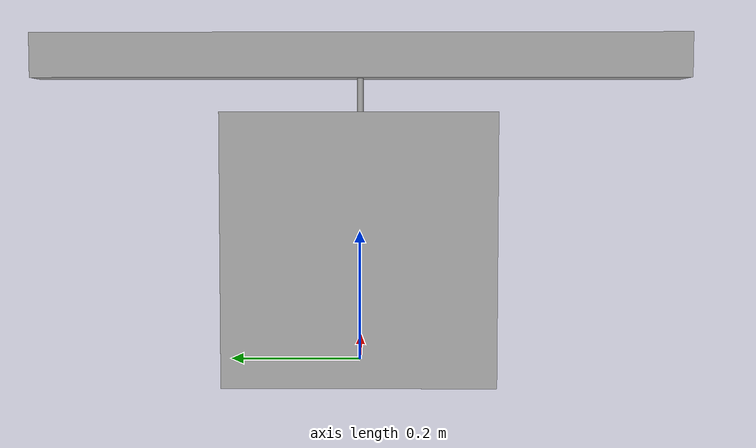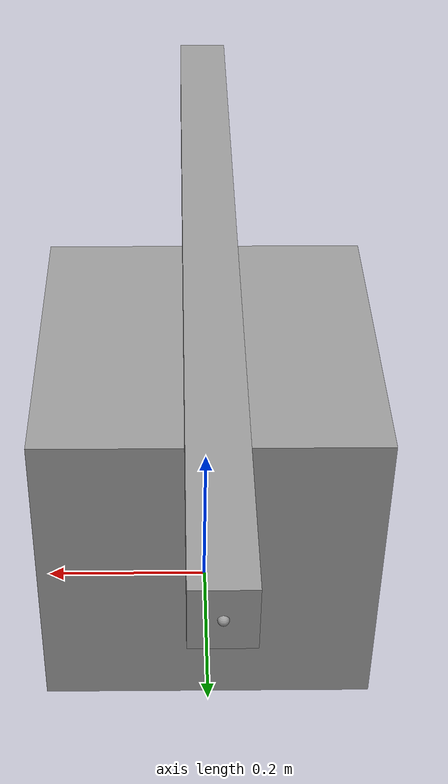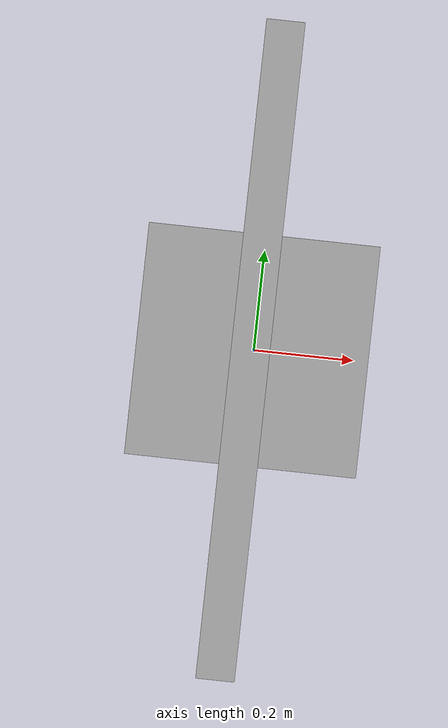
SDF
<?xml version='1.0'?>
<sdf version='1.6'>
  <model name='example'>
    <pose>-0.001696 0.074616 0.37556 0 0 0</pose>
    <link name='link_0'>
      <inertial>
        <mass>19299.9</mass>
        <inertia>
          <ixx>461.921</ixx>
          <ixy>0</ixy>
          <ixz>0</ixz>
          <iyy>461.921</iyy>
          <iyz>0</iyz>
          <izz>461.92</izz>
        </inertia>
        <pose frame=''>0 0 0 0 -0 0</pose>
      </inertial>
      <pose frame=''>0.001696 -0.074616 -0.186085 0 -0 0</pose>
      <gravity>1</gravity>
      <self_collide>0</self_collide>
      <kinematic>0</kinematic>
      <enable_wind>0</enable_wind>
      <visual name='visual'>
        <pose frame=''>0 0 0 0 -0 0</pose>
        <geometry>
          <box>
            <size>0.37895 0.37895 0.378951</size>
          </box>
        </geometry>
        <material>
          <lighting>1</lighting>
          <script>
            <uri>file://media/materials/scripts/gazebo.material</uri>
            <name>Gazebo/Grey</name>
          </script>
          <shader type='vertex'>
            <normal_map>__default__</normal_map>
          </shader>
          <ambient>0.18 0.204 0.212 1</ambient>
          <diffuse>0.18 0.204 0.212 1</diffuse>
          <specular>0.18 0.204 0.212 1</specular>
          <emissive>0 0 0 1</emissive>
        </material>
        <transparency>0</transparency>
        <cast_shadows>1</cast_shadows>
      </visual>
      <collision name='collision'>
        <laser_retro>0</laser_retro>
        <max_contacts>10</max_contacts>
        <pose frame=''>0 0 0 0 -0 0</pose>
        <geometry>
          <box>
            <size>0.37895 0.37895 0.378951</size>
          </box>
        </geometry>
        <surface>
          <friction>
            <ode>
              <mu>1</mu>
              <mu2>1</mu2>
              <fdir1>0 0 0</fdir1>
              <slip1>0</slip1>
              <slip2>0</slip2>
            </ode>
            <torsional>
              <coefficient>1</coefficient>
              <patch_radius>0</patch_radius>
              <surface_radius>0</surface_radius>
              <use_patch_radius>1</use_patch_radius>
              <ode>
                <slip>0</slip>
              </ode>
            </torsional>
          </friction>
          <bounce>
            <restitution_coefficient>0</restitution_coefficient>
            <threshold>1e+06</threshold>
          </bounce>
          <contact>
            <collide_without_contact>0</collide_without_contact>
            <collide_without_contact_bitmask>1</collide_without_contact_bitmask>
            <collide_bitmask>1</collide_bitmask>
            <ode>
              <soft_cfm>0</soft_cfm>
              <soft_erp>0.2</soft_erp>
              <kp>1e+13</kp>
              <kd>1</kd>
              <max_vel>0.01</max_vel>
              <min_depth>0</min_depth>
            </ode>
            <bullet>
              <split_impulse>1</split_impulse>
              <split_impulse_penetration_threshold>-0.01</split_impulse_penetration_threshold>
              <soft_cfm>0</soft_cfm>
              <soft_erp>0.2</soft_erp>
              <kp>1e+13</kp>
              <kd>1</kd>
            </bullet>
          </contact>
        </surface>
      </collision>
    </link>
    <link name='link_2'>
      <inertial>
        <mass>2.79515</mass>
        <inertia>
          <ixx>0.234003</ixx>
          <ixy>0</ixy>
          <ixz>0</ixz>
          <iyy>0.00187933</iyy>
          <iyz>0</iyz>
          <izz>0.233735</izz>
        </inertia>
        <pose frame=''>0 0 0 0 -0 0</pose>
      </inertial>
      <pose frame=''>0 -0.075 0.093852 0 -0 0</pose>
      <gravity>1</gravity>
      <self_collide>0</self_collide>
      <kinematic>0</kinematic>
      <enable_wind>0</enable_wind>
      <visual name='visual'>
        <pose frame=''>0 0 0 0 -0 0</pose>
        <geometry>
          <box>
            <size>0.058822 1 0.067884</size>
          </box>
        </geometry>
        <material>
          <lighting>1</lighting>
          <script>
            <uri>file://media/materials/scripts/gazebo.material</uri>
            <name>Gazebo/Grey</name>
          </script>
          <shader type='vertex'>
            <normal_map>__default__</normal_map>
          </shader>
          <ambient>0.3 0.3 0.3 1</ambient>
          <diffuse>0.7 0.7 0.7 1</diffuse>
          <specular>0.01 0.01 0.01 1</specular>
          <emissive>0 0 0 1</emissive>
        </material>
        <transparency>0</transparency>
        <cast_shadows>1</cast_shadows>
      </visual>
      <collision name='collision'>
        <laser_retro>0</laser_retro>
        <max_contacts>10</max_contacts>
        <pose frame=''>0 0 0 0 -0 0</pose>
        <geometry>
          <box>
            <size>0.058822 1 0.067884</size>
          </box>
        </geometry>
        <surface>
          <friction>
            <ode>
              <mu>1</mu>
              <mu2>1</mu2>
              <fdir1>0 0 0</fdir1>
              <slip1>0</slip1>
              <slip2>0</slip2>
            </ode>
            <torsional>
              <coefficient>1</coefficient>
              <patch_radius>0</patch_radius>
              <surface_radius>0</surface_radius>
              <use_patch_radius>1</use_patch_radius>
              <ode>
                <slip>0</slip>
              </ode>
            </torsional>
          </friction>
          <bounce>
            <restitution_coefficient>0</restitution_coefficient>
            <threshold>1e+06</threshold>
          </bounce>
          <contact>
            <collide_without_contact>0</collide_without_contact>
            <collide_without_contact_bitmask>1</collide_without_contact_bitmask>
            <collide_bitmask>1</collide_bitmask>
            <ode>
              <soft_cfm>0</soft_cfm>
              <soft_erp>0.2</soft_erp>
              <kp>1e+13</kp>
              <kd>1</kd>
              <max_vel>0.01</max_vel>
              <min_depth>0</min_depth>
            </ode>
            <bullet>
              <split_impulse>1</split_impulse>
              <split_impulse_penetration_threshold>-0.01</split_impulse_penetration_threshold>
              <soft_cfm>0</soft_cfm>
              <soft_erp>0.2</soft_erp>
              <kp>1e+13</kp>
              <kd>1</kd>
            </bullet>
          </contact>
        </surface>
      </collision>
    </link>
    <link name='link_3'>
      <inertial>
        <mass>1</mass>
        <inertia>
          <ixx>0.1</ixx>
          <ixy>0</ixy>
          <ixz>0</ixz>
          <iyy>0.1</iyy>
          <iyz>0</iyz>
          <izz>0.1</izz>
        </inertia>
        <pose frame=''>0 0 0 0 -0 0</pose>
      </inertial>
      <pose frame=''>0 -0.575 0.093852 0 -0 0</pose>
      <gravity>1</gravity>
      <self_collide>0</self_collide>
      <kinematic>0</kinematic>
      <enable_wind>0</enable_wind>
      <visual name='visual'>
        <pose frame=''>0 0 0 0 -0 0</pose>
        <geometry>
          <sphere>
            <radius>0.005</radius>
          </sphere>
        </geometry>
        <material>
          <lighting>1</lighting>
          <script>
            <uri>file://media/materials/scripts/gazebo.material</uri>
            <name>Gazebo/Grey</name>
          </script>
          <shader type='vertex'>
            <normal_map>__default__</normal_map>
          </shader>
          <ambient>0.3 0.3 0.3 1</ambient>
          <diffuse>0.7 0.7 0.7 1</diffuse>
          <specular>0.01 0.01 0.01 1</specular>
          <emissive>0 0 0 1</emissive>
        </material>
        <transparency>0</transparency>
        <cast_shadows>1</cast_shadows>
      </visual>
      <collision name='collision'>
        <laser_retro>0</laser_retro>
        <max_contacts>10</max_contacts>
        <pose frame=''>0 0 0 0 -0 0</pose>
        <geometry>
          <sphere>
            <radius>0.005</radius>
          </sphere>
        </geometry>
        <surface>
          <friction>
            <ode>
              <mu>1</mu>
              <mu2>1</mu2>
              <fdir1>0 0 0</fdir1>
              <slip1>0</slip1>
              <slip2>0</slip2>
            </ode>
            <torsional>
              <coefficient>1</coefficient>
              <patch_radius>0</patch_radius>
              <surface_radius>0</surface_radius>
              <use_patch_radius>1</use_patch_radius>
              <ode>
                <slip>0</slip>
              </ode>
            </torsional>
          </friction>
          <bounce>
            <restitution_coefficient>0</restitution_coefficient>
            <threshold>1e+06</threshold>
          </bounce>
          <contact>
            <collide_without_contact>0</collide_without_contact>
            <collide_without_contact_bitmask>1</collide_without_contact_bitmask>
            <collide_bitmask>1</collide_bitmask>
            <ode>
              <soft_cfm>0</soft_cfm>
              <soft_erp>0.2</soft_erp>
              <kp>1e+13</kp>
              <kd>1</kd>
              <max_vel>0.01</max_vel>
              <min_depth>0</min_depth>
            </ode>
            <bullet>
              <split_impulse>1</split_impulse>
              <split_impulse_penetration_threshold>-0.01</split_impulse_penetration_threshold>
              <soft_cfm>0</soft_cfm>
              <soft_erp>0.2</soft_erp>
              <kp>1e+13</kp>
              <kd>1</kd>
            </bullet>
          </contact>
        </surface>
      </collision>
    </link>
    <link name='link_3_clone'>
      <inertial>
        <mass>1</mass>
        <inertia>
          <ixx>0.1</ixx>
          <ixy>0</ixy>
          <ixz>0</ixz>
          <iyy>0.1</iyy>
          <iyz>0</iyz>
          <izz>0.1</izz>
        </inertia>
        <pose frame=''>0 0 0 0 -0 0</pose>
      </inertial>
      <pose frame=''>0 0.425 0.093852 0 -0 0</pose>
      <gravity>1</gravity>
      <self_collide>0</self_collide>
      <kinematic>0</kinematic>
      <enable_wind>0</enable_wind>
      <visual name='visual'>
        <pose frame=''>0 0 0 0 -0 0</pose>
        <geometry>
          <sphere>
            <radius>0.005</radius>
          </sphere>
        </geometry>
        <material>
          <lighting>1</lighting>
          <script>
            <uri>file://media/materials/scripts/gazebo.material</uri>
            <name>Gazebo/Grey</name>
          </script>
          <shader type='vertex'>
            <normal_map>__default__</normal_map>
          </shader>
          <ambient>0.3 0.3 0.3 1</ambient>
          <diffuse>0.7 0.7 0.7 1</diffuse>
          <specular>0.01 0.01 0.01 1</specular>
          <emissive>0 0 0 1</emissive>
        </material>
        <transparency>0</transparency>
        <cast_shadows>1</cast_shadows>
      </visual>
      <collision name='collision'>
        <laser_retro>0</laser_retro>
        <max_contacts>10</max_contacts>
        <pose frame=''>0 0 0 0 -0 0</pose>
        <geometry>
          <sphere>
            <radius>0.005</radius>
          </sphere>
        </geometry>
        <surface>
          <friction>
            <ode>
              <mu>1</mu>
              <mu2>1</mu2>
              <fdir1>0 0 0</fdir1>
              <slip1>0</slip1>
              <slip2>0</slip2>
            </ode>
            <torsional>
              <coefficient>1</coefficient>
              <patch_radius>0</patch_radius>
              <surface_radius>0</surface_radius>
              <use_patch_radius>1</use_patch_radius>
              <ode>
                <slip>0</slip>
              </ode>
            </torsional>
          </friction>
          <bounce>
            <restitution_coefficient>0</restitution_coefficient>
            <threshold>1e+06</threshold>
          </bounce>
          <contact>
            <collide_without_contact>0</collide_without_contact>
            <collide_without_contact_bitmask>1</collide_without_contact_bitmask>
            <collide_bitmask>1</collide_bitmask>
            <ode>
              <soft_cfm>0</soft_cfm>
              <soft_erp>0.2</soft_erp>
              <kp>1e+13</kp>
              <kd>1</kd>
              <max_vel>0.01</max_vel>
              <min_depth>0</min_depth>
            </ode>
            <bullet>
              <split_impulse>1</split_impulse>
              <split_impulse_penetration_threshold>-0.01</split_impulse_penetration_threshold>
              <soft_cfm>0</soft_cfm>
              <soft_erp>0.2</soft_erp>
              <kp>1e+13</kp>
              <kd>1</kd>
            </bullet>
          </contact>
        </surface>
      </collision>
    </link>
    <link name='link_4'>
      <inertial>
        <mass>0.351276</mass>
        <inertia>
          <ixx>0.00361421</ixx>
          <ixy>0</ixy>
          <ixz>0</ixz>
          <iyy>0.00361421</iyy>
          <iyz>0</iyz>
          <izz>4.39e-06</izz>
        </inertia>
        <pose frame=''>0 0 0 0 -0 0</pose>
      </inertial>
      <pose frame=''>0 -0.075 -0.096805 0 -0 0</pose>
      <gravity>1</gravity>
      <self_collide>0</self_collide>
      <kinematic>0</kinematic>
      <enable_wind>0</enable_wind>
      <visual name='visual'>
        <pose frame=''>0 0 0 0 -0 0</pose>
        <geometry>
          <cylinder>
            <radius>0.005</radius>
            <length>0.378951</length>
          </cylinder>
        </geometry>
        <material>
          <lighting>1</lighting>
          <script>
            <uri>file://media/materials/scripts/gazebo.material</uri>
            <name>Gazebo/Grey</name>
          </script>
          <shader type='vertex'>
            <normal_map>__default__</normal_map>
          </shader>
          <ambient>0.3 0.3 0.3 1</ambient>
          <diffuse>0.7 0.7 0.7 1</diffuse>
          <specular>0.01 0.01 0.01 1</specular>
          <emissive>0 0 0 1</emissive>
        </material>
        <transparency>0</transparency>
        <cast_shadows>1</cast_shadows>
      </visual>
      <collision name='collision'>
        <laser_retro>0</laser_retro>
        <max_contacts>10</max_contacts>
        <pose frame=''>0 0 0 0 -0 0</pose>
        <geometry>
          <cylinder>
            <radius>0.005</radius>
            <length>0.378951</length>
          </cylinder>
        </geometry>
        <surface>
          <friction>
            <ode>
              <mu>1</mu>
              <mu2>1</mu2>
              <fdir1>0 0 0</fdir1>
              <slip1>0</slip1>
              <slip2>0</slip2>
            </ode>
            <torsional>
              <coefficient>1</coefficient>
              <patch_radius>0</patch_radius>
              <surface_radius>0</surface_radius>
              <use_patch_radius>1</use_patch_radius>
              <ode>
                <slip>0</slip>
              </ode>
            </torsional>
          </friction>
          <bounce>
            <restitution_coefficient>0</restitution_coefficient>
            <threshold>1e+06</threshold>
          </bounce>
          <contact>
            <collide_without_contact>0</collide_without_contact>
            <collide_without_contact_bitmask>1</collide_without_contact_bitmask>
            <collide_bitmask>1</collide_bitmask>
            <ode>
              <soft_cfm>0</soft_cfm>
              <soft_erp>0.2</soft_erp>
              <kp>1e+13</kp>
              <kd>1</kd>
              <max_vel>0.01</max_vel>
              <min_depth>0</min_depth>
            </ode>
            <bullet>
              <split_impulse>1</split_impulse>
              <split_impulse_penetration_threshold>-0.01</split_impulse_penetration_threshold>
              <soft_cfm>0</soft_cfm>
              <soft_erp>0.2</soft_erp>
              <kp>1e+13</kp>
              <kd>1</kd>
            </bullet>
          </contact>
        </surface>
      </collision>
    </link>
    <joint name='link_2_JOINT_2' type='fixed'>
      <parent>link_2</parent>
      <child>link_3</child>
      <pose frame=''>0 0 0 0 -0 0</pose>
      <physics>
        <ode>
          <limit>
            <cfm>0</cfm>
            <erp>0.2</erp>
          </limit>
          <suspension>
            <cfm>0</cfm>
            <erp>0.2</erp>
          </suspension>
        </ode>
      </physics>
    </joint>
    <joint name='link_2_JOINT_3' type='fixed'>
      <parent>link_2</parent>
      <child>link_3_clone</child>
      <pose frame=''>0 0 0 0 -0 0</pose>
      <physics>
        <ode>
          <limit>
            <cfm>0</cfm>
            <erp>0.2</erp>
          </limit>
          <suspension>
            <cfm>0</cfm>
            <erp>0.2</erp>
          </suspension>
        </ode>
      </physics>
    </joint>
    <plugin name="visualplgn_hell" filename="libLinkPlot3DPlugin.so">
      <plot>
	      <link>robot::link_3</link>
	      <material>Gazebo/Red</material>
      </plot>
      <plot>
	      <link>robot::link_3_clone</link>
	      <material>Gazebo/Green</material>
      </plot>
      <frequency>10000</frequency>
    </plugin>
    <joint name='prismat' type='prismatic'>
      <parent>link_0</parent>
      <child>link_4</child>
      <pose frame=''>0 0 0 0 -0 0</pose>
      <axis>
        <xyz>0 0 1</xyz>
        <use_parent_model_frame>0</use_parent_model_frame>
        <limit>
          <lower>0</lower>
          <upper>0.5</upper>
          <effort>-1</effort>
          <velocity>-1</velocity>
        </limit>
        <dynamics>
          <spring_reference>0</spring_reference>
          <spring_stiffness>0</spring_stiffness>
          <damping>0</damping>
          <friction>0</friction>
        </dynamics>
      </axis>
      <physics>
        <ode>
          <limit>
            <cfm>0</cfm>
            <erp>0.2</erp>
          </limit>
          <suspension>
            <cfm>0</cfm>
            <erp>0.2</erp>
          </suspension>
        </ode>
      </physics>
    </joint>
    <joint name='rev' type='revolute'>
      <parent>link_4</parent>
      <child>link_2</child>
      <pose frame=''>0 0 0 0 -0 0</pose>
      <axis>
        <xyz>0 0 1</xyz>
        <use_parent_model_frame>0</use_parent_model_frame>
        <limit>
          <lower>-100000</lower>
          <upper>100000</upper>
          <effort>-1</effort>
          <velocity>-1</velocity>
        </limit>
        <dynamics>
          <spring_reference>0</spring_reference>
          <spring_stiffness>0</spring_stiffness>
          <damping>0</damping>
          <friction>0</friction>
        </dynamics>
      </axis>
      <physics>
        <ode>
          <limit>
            <cfm>0</cfm>
            <erp>0.2</erp>
          </limit>
          <suspension>
            <cfm>0</cfm>
            <erp>0.2</erp>
          </suspension>
        </ode>
      </physics>
    </joint>
    <static>0</static>
    <allow_auto_disable>1</allow_auto_disable>

   <plugin name="examplgn" filename="libvel_control_pligin.so"/>

   <plugin name="visualplgn" filename="libLinkPlot3DPlugin.so">
      <plot>
	      <link>example::link_3</link>
	      <material>Gazebo/Red</material>
      </plot>
      <plot>
	      <link>example::link_3_clone</link>
	      <material>Gazebo/Green</material>
      </plot>
      <frequency>100</frequency>
    </plugin>

  </model>
</sdf>
